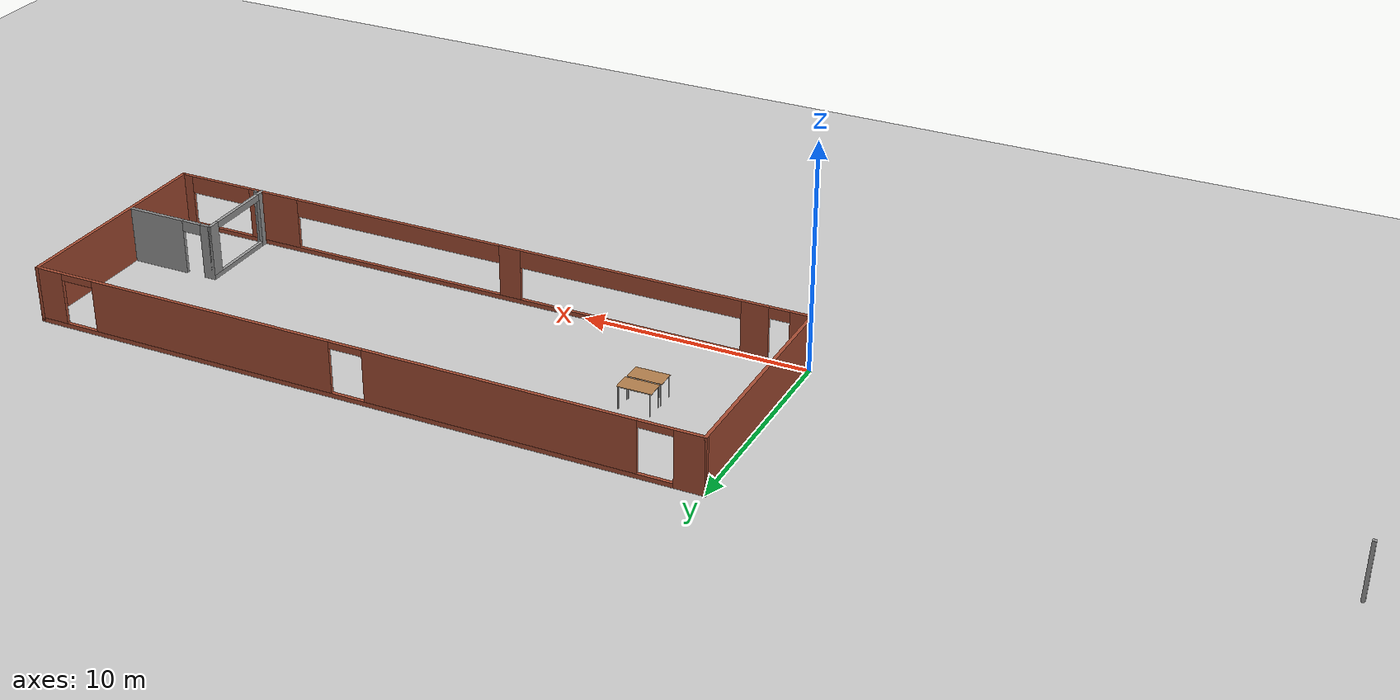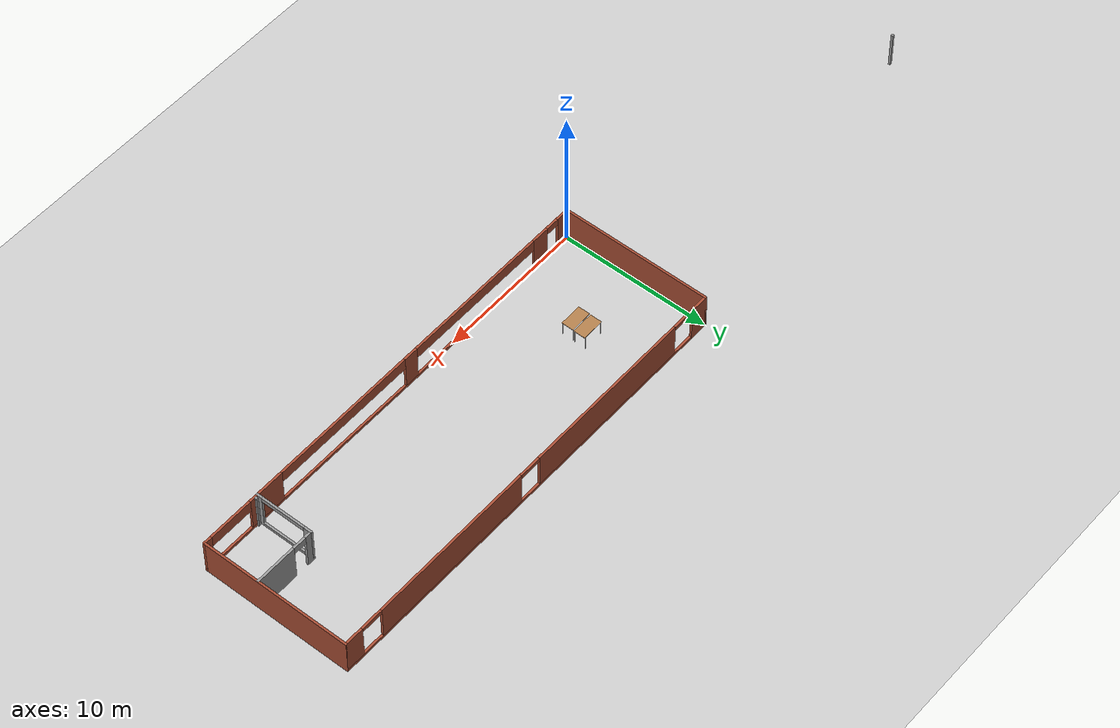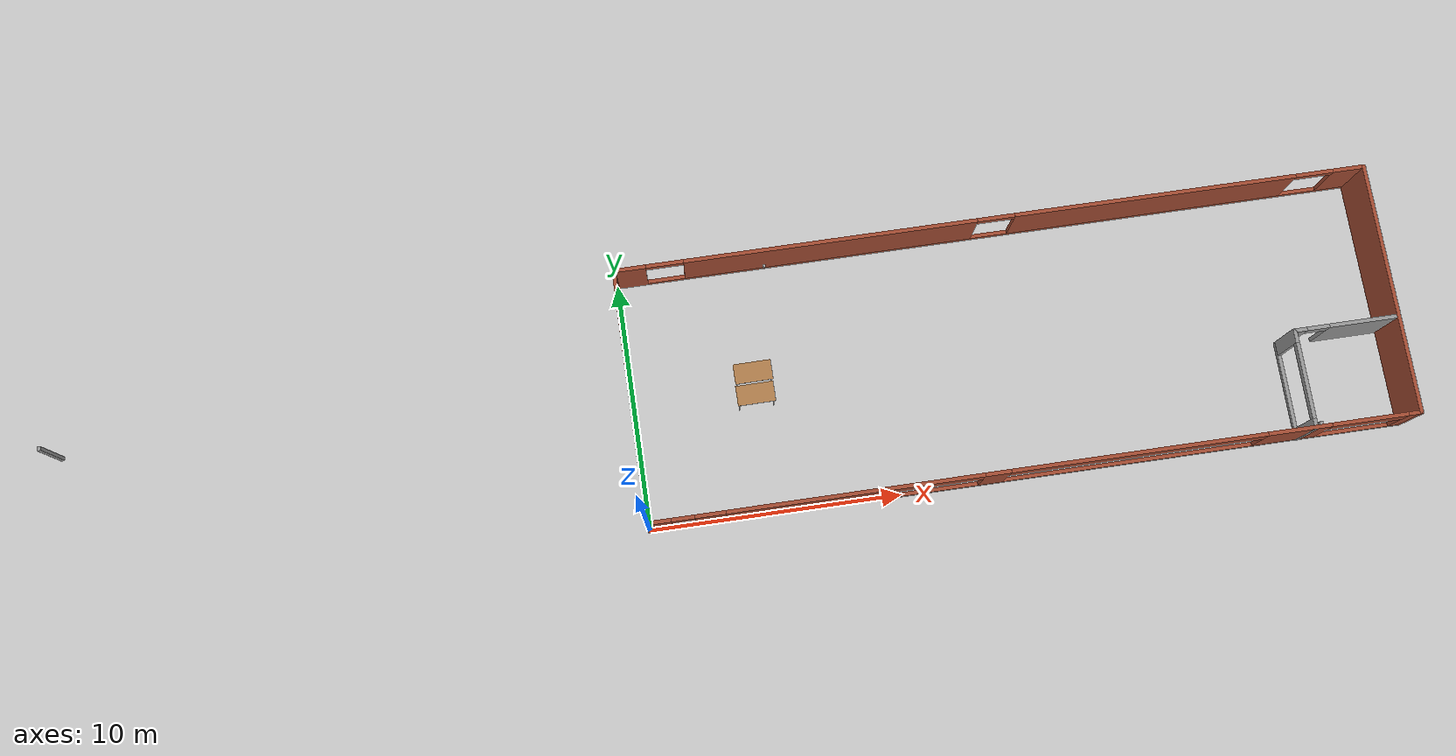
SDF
<sdf version="1.6">
 <world name="default">
  <model name="ground_plane">
   <static>1</static>
   <link name="link">
    <collision name="collision">
     <geometry><plane><normal>0 0 1</normal><size>100 100</size></plane></geometry>
     <surface>
      <contact><collide_bitmask>65535</collide_bitmask></contact>
      <friction><ode><mu>100</mu><mu2>50</mu2></ode></friction>
     </surface>
    </collision>
    <visual name="visual">
     <cast_shadows>0</cast_shadows>
     <geometry><plane><normal>0 0 1</normal><size>100 100</size></plane></geometry>
     <material>
      <script><uri>file://media/materials/scripts/gazebo.material</uri><name>Gazebo/Grey</name></script>
     </material>
    </visual>
   </link>
  </model>
  <model name="office">
   <pose>3.67575 4.99351 0 0 -0 0</pose>
   <link name="Wall_13">
    <collision name="Wall_13_Collision">
     <geometry><box><size>10.15 0.15 2.5</size></box></geometry>
     <pose>0 0 1.25 0 -0 0</pose>
    </collision>
    <visual name="Wall_13_Visual">
     <pose>0 0 1.25 0 -0 0</pose>
     <geometry><box><size>10.15 0.15 2.5</size></box></geometry>
     <material>
      <script><uri>file://media/materials/scripts/gazebo.material</uri><name>Gazebo/Bricks</name></script>
      <ambient>1 1 1 1</ambient>
     </material>
     <meta><layer>0</layer></meta>
    </visual>
    <pose>-3.67575 0.006489 0 0 -0 1.5708</pose>
   </link>
   <link name="Wall_15">
    <pose>11.3242 5.00649 0 0 -0 0</pose>
    <visual name="Wall_15_Visual_0">
     <pose>-14.4125 0 1.25 0 -0 0</pose>
     <geometry><box><size>1.325 0.15 2.5</size></box></geometry>
     <material>
      <script><uri>file://media/materials/scripts/gazebo.material</uri><name>Gazebo/Bricks</name></script>
      <ambient>1 1 1 1</ambient>
     </material>
     <meta><layer>0</layer></meta>
    </visual>
    <collision name="Wall_15_Collision_0">
     <geometry><box><size>1.325 0.15 2.5</size></box></geometry>
     <pose>-14.4125 0 1.25 0 -0 0</pose>
    </collision>
    <visual name="Wall_15_Visual_1">
     <pose>0.6625 0 0.1 0 -0 0</pose>
     <geometry><box><size>28.825 0.15 0.2</size></box></geometry>
     <material>
      <script><uri>file://media/materials/scripts/gazebo.material</uri><name>Gazebo/Bricks</name></script>
      <ambient>1 1 1 1</ambient>
     </material>
     <meta><layer>0</layer></meta>
    </visual>
    <collision name="Wall_15_Collision_1">
     <geometry><box><size>28.825 0.15 0.2</size></box></geometry>
     <pose>0.6625 0 0.1 0 -0 0</pose>
    </collision>
    <visual name="Wall_15_Visual_2">
     <pose>-6.4 0 1.35 0 -0 0</pose>
     <geometry><box><size>11.7 0.15 2.3</size></box></geometry>
     <material>
      <script><uri>file://media/materials/scripts/gazebo.material</uri><name>Gazebo/Bricks</name></script>
      <ambient>1 1 1 1</ambient>
     </material>
     <meta><layer>0</layer></meta>
    </visual>
    <collision name="Wall_15_Collision_2">
     <geometry><box><size>11.7 0.15 2.3</size></box></geometry>
     <pose>-6.4 0 1.35 0 -0 0</pose>
    </collision>
    <visual name="Wall_15_Visual_3">
     <pose>6.6 0 1.35 0 -0 0</pose>
     <geometry><box><size>11.3 0.15 2.3</size></box></geometry>
     <material>
      <script><uri>file://media/materials/scripts/gazebo.material</uri><name>Gazebo/Bricks</name></script>
      <ambient>1 1 1 1</ambient>
     </material>
     <meta><layer>0</layer></meta>
    </visual>
    <collision name="Wall_15_Collision_3">
     <geometry><box><size>11.3 0.15 2.3</size></box></geometry>
     <pose>6.6 0 1.35 0 -0 0</pose>
    </collision>
    <visual name="Wall_15_Visual_4">
     <pose>14.4125 0 1.35 0 -0 0</pose>
     <geometry><box><size>1.325 0.15 2.3</size></box></geometry>
     <material>
      <script><uri>file://media/materials/scripts/gazebo.material</uri><name>Gazebo/Bricks</name></script>
      <ambient>1 1 1 1</ambient>
     </material>
     <meta><layer>0</layer></meta>
    </visual>
    <collision name="Wall_15_Collision_4">
     <geometry><box><size>1.325 0.15 2.3</size></box></geometry>
     <pose>14.4125 0 1.35 0 -0 0</pose>
    </collision>
    <visual name="Wall_15_Visual_5">
     <pose>-13 0 2.35 0 -0 0</pose>
     <geometry><box><size>1.5 0.15 0.3</size></box></geometry>
     <material>
      <script><uri>file://media/materials/scripts/gazebo.material</uri><name>Gazebo/Bricks</name></script>
      <ambient>1 1 1 1</ambient>
     </material>
     <meta><layer>0</layer></meta>
    </visual>
    <collision name="Wall_15_Collision_5">
     <geometry><box><size>1.5 0.15 0.3</size></box></geometry>
     <pose>-13 0 2.35 0 -0 0</pose>
    </collision>
    <visual name="Wall_15_Visual_6">
     <pose>0.2 0 2.35 0 -0 0</pose>
     <geometry><box><size>1.5 0.15 0.3</size></box></geometry>
     <material>
      <script><uri>file://media/materials/scripts/gazebo.material</uri><name>Gazebo/Bricks</name></script>
      <ambient>1 1 1 1</ambient>
     </material>
     <meta><layer>0</layer></meta>
    </visual>
    <collision name="Wall_15_Collision_6">
     <geometry><box><size>1.5 0.15 0.3</size></box></geometry>
     <pose>0.2 0 2.35 0 -0 0</pose>
    </collision>
    <visual name="Wall_15_Visual_7">
     <pose>13 0 2.35 0 -0 0</pose>
     <geometry><box><size>1.5 0.15 0.3</size></box></geometry>
     <material>
      <script><uri>file://media/materials/scripts/gazebo.material</uri><name>Gazebo/Bricks</name></script>
      <ambient>1 1 1 1</ambient>
     </material>
     <meta><layer>0</layer></meta>
    </visual>
    <collision name="Wall_15_Collision_7">
     <geometry><box><size>1.5 0.15 0.3</size></box></geometry>
     <pose>13 0 2.35 0 -0 0</pose>
    </collision>
   </link>
   <link name="Wall_16">
    <collision name="Wall_16_Collision">
     <geometry><box><size>10.15 0.15 2.5</size></box></geometry>
     <pose>0 0 1.25 0 -0 0</pose>
    </collision>
    <visual name="Wall_16_Visual">
     <pose>0 0 1.25 0 -0 0</pose>
     <geometry><box><size>10.15 0.15 2.5</size></box></geometry>
     <material>
      <script><uri>file://media/materials/scripts/gazebo.material</uri><name>Gazebo/Bricks</name></script>
      <ambient>1 1 1 1</ambient>
     </material>
     <meta><layer>0</layer></meta>
    </visual>
    <pose>26.3242 0.006489 0 0 0 -1.5708</pose>
   </link>
   <link name="Wall_19">
    <collision name="Wall_19_Collision">
     <geometry><box><size>0.15 0.15 2.5</size></box></geometry>
     <pose>0 0 1.25 0 -0 0</pose>
    </collision>
    <visual name="Wall_19_Visual">
     <pose>0 0 1.25 0 -0 0</pose>
     <geometry><box><size>0.15 0.15 2.5</size></box></geometry>
     <material>
      <script><uri>file://media/materials/scripts/gazebo.material</uri><name>Gazebo/Grey</name></script>
      <ambient>1 1 1 1</ambient>
     </material>
     <meta><layer>0</layer></meta>
    </visual>
    <pose>22.4116 -4.87772 0 0 -0 0</pose>
   </link>
   <link name="Wall_21">
    <pose>11.3242 -4.99351 0 0 -0 0</pose>
    <visual name="Wall_21_Visual_0">
     <pose>-14.5861 0 1.25 0 -0 0</pose>
     <geometry><box><size>0.977872 0.15 2.5</size></box></geometry>
     <material>
      <script><uri>file://media/materials/scripts/gazebo.material</uri><name>Gazebo/Bricks</name></script>
      <ambient>1 1 1 1</ambient>
     </material>
     <meta><layer>0</layer></meta>
    </visual>
    <collision name="Wall_21_Collision_0">
     <geometry><box><size>0.977872 0.15 2.5</size></box></geometry>
     <pose>-14.5861 0 1.25 0 -0 0</pose>
    </collision>
    <visual name="Wall_21_Visual_1">
     <pose>-12.5986 0 1.25 0 -0 0</pose>
     <geometry><box><size>1.19713 0.15 2.5</size></box></geometry>
     <material>
      <script><uri>file://media/materials/scripts/gazebo.material</uri><name>Gazebo/Bricks</name></script>
      <ambient>1 1 1 1</ambient>
     </material>
     <meta><layer>0</layer></meta>
    </visual>
    <collision name="Wall_21_Collision_1">
     <geometry><box><size>1.19713 0.15 2.5</size></box></geometry>
     <pose>-12.5986 0 1.25 0 -0 0</pose>
    </collision>
    <visual name="Wall_21_Visual_2">
     <pose>1.5375 0 0.1 0 -0 0</pose>
     <geometry><box><size>27.075 0.15 0.2</size></box></geometry>
     <material>
      <script><uri>file://media/materials/scripts/gazebo.material</uri><name>Gazebo/Bricks</name></script>
      <ambient>1 1 1 1</ambient>
     </material>
     <meta><layer>0</layer></meta>
    </visual>
    <collision name="Wall_21_Collision_2">
     <geometry><box><size>27.075 0.15 0.2</size></box></geometry>
     <pose>1.5375 0 0.1 0 -0 0</pose>
    </collision>
    <visual name="Wall_21_Visual_3">
     <pose>-1.5 0 1.35 0 -0 0</pose>
     <geometry><box><size>1 0.15 2.3</size></box></geometry>
     <material>
      <script><uri>file://media/materials/scripts/gazebo.material</uri><name>Gazebo/Bricks</name></script>
      <ambient>1 1 1 1</ambient>
     </material>
     <meta><layer>0</layer></meta>
    </visual>
    <collision name="Wall_21_Collision_3">
     <geometry><box><size>1 0.15 2.3</size></box></geometry>
     <pose>-1.5 0 1.35 0 -0 0</pose>
    </collision>
    <visual name="Wall_21_Visual_4">
     <pose>10.2486 0 1.35 0 -0 0</pose>
     <geometry><box><size>2.49712 0.15 2.3</size></box></geometry>
     <material>
      <script><uri>file://media/materials/scripts/gazebo.material</uri><name>Gazebo/Bricks</name></script>
      <ambient>1 1 1 1</ambient>
     </material>
     <meta><layer>0</layer></meta>
    </visual>
    <collision name="Wall_21_Collision_4">
     <geometry><box><size>2.49712 0.15 2.3</size></box></geometry>
     <pose>10.2486 0 1.35 0 -0 0</pose>
    </collision>
    <visual name="Wall_21_Visual_5">
     <pose>14.7861 0 1.35 0 -0 0</pose>
     <geometry><box><size>0.577882 0.15 2.3</size></box></geometry>
     <material>
      <script><uri>file://media/materials/scripts/gazebo.material</uri><name>Gazebo/Bricks</name></script>
      <ambient>1 1 1 1</ambient>
     </material>
     <meta><layer>0</layer></meta>
    </visual>
    <collision name="Wall_21_Collision_5">
     <geometry><box><size>0.577882 0.15 2.3</size></box></geometry>
     <pose>14.7861 0 1.35 0 -0 0</pose>
    </collision>
    <visual name="Wall_21_Visual_6">
     <pose>-7 0 2.1 0 -0 0</pose>
     <geometry><box><size>10 0.15 0.8</size></box></geometry>
     <material>
      <script><uri>file://media/materials/scripts/gazebo.material</uri><name>Gazebo/Bricks</name></script>
      <ambient>1 1 1 1</ambient>
     </material>
     <meta><layer>0</layer></meta>
    </visual>
    <collision name="Wall_21_Collision_6">
     <geometry><box><size>10 0.15 0.8</size></box></geometry>
     <pose>-7 0 2.1 0 -0 0</pose>
    </collision>
    <visual name="Wall_21_Visual_7">
     <pose>4 0 2.1 0 -0 0</pose>
     <geometry><box><size>10 0.15 0.8</size></box></geometry>
     <material>
      <script><uri>file://media/materials/scripts/gazebo.material</uri><name>Gazebo/Bricks</name></script>
      <ambient>1 1 1 1</ambient>
     </material>
     <meta><layer>0</layer></meta>
    </visual>
    <collision name="Wall_21_Collision_7">
     <geometry><box><size>10 0.15 0.8</size></box></geometry>
     <pose>4 0 2.1 0 -0 0</pose>
    </collision>
    <visual name="Wall_21_Visual_8">
     <pose>12.9971 0 2.1 0 -0 0</pose>
     <geometry><box><size>3 0.15 0.8</size></box></geometry>
     <material>
      <script><uri>file://media/materials/scripts/gazebo.material</uri><name>Gazebo/Bricks</name></script>
      <ambient>1 1 1 1</ambient>
     </material>
     <meta><layer>0</layer></meta>
    </visual>
    <collision name="Wall_21_Collision_8">
     <geometry><box><size>3 0.15 0.8</size></box></geometry>
     <pose>12.9971 0 2.1 0 -0 0</pose>
    </collision>
    <visual name="Wall_21_Visual_9">
     <pose>-13.6471 0 2.25 0 -0 0</pose>
     <geometry><box><size>0.9 0.15 0.5</size></box></geometry>
     <material>
      <script><uri>file://media/materials/scripts/gazebo.material</uri><name>Gazebo/Bricks</name></script>
      <ambient>1 1 1 1</ambient>
     </material>
     <meta><layer>0</layer></meta>
    </visual>
    <collision name="Wall_21_Collision_9">
     <geometry><box><size>0.9 0.15 0.5</size></box></geometry>
     <pose>-13.6471 0 2.25 0 -0 0</pose>
    </collision>
   </link>
   <link name="Wall_23">
    <pose>22.1935 -3.08149 0 0 -0 1.5708</pose>
    <visual name="Wall_23_Visual_0">
     <pose>-1.78202 0 1.25 0 -0 0</pose>
     <geometry><box><size>0.435956 0.15 2.5</size></box></geometry>
     <material>
      <script><uri>file://media/materials/scripts/gazebo.material</uri><name>Gazebo/Grey</name></script>
      <ambient>1 1 1 1</ambient>
     </material>
     <meta><layer>0</layer></meta>
    </visual>
    <collision name="Wall_23_Collision_0">
     <geometry><box><size>0.435956 0.15 2.5</size></box></geometry>
     <pose>-1.78202 0 1.25 0 -0 0</pose>
    </collision>
    <visual name="Wall_23_Visual_1">
     <pose>0.217978 0 0.1 0 -0 0</pose>
     <geometry><box><size>3.56404 0.15 0.2</size></box></geometry>
     <material>
      <script><uri>file://media/materials/scripts/gazebo.material</uri><name>Gazebo/Grey</name></script>
      <ambient>1 1 1 1</ambient>
     </material>
     <meta><layer>0</layer></meta>
    </visual>
    <collision name="Wall_23_Collision_1">
     <geometry><box><size>3.56404 0.15 0.2</size></box></geometry>
     <pose>0.217978 0 0.1 0 -0 0</pose>
    </collision>
    <visual name="Wall_23_Visual_2">
     <pose>1.71798 0 1.35 0 -0 0</pose>
     <geometry><box><size>0.564044 0.15 2.3</size></box></geometry>
     <material>
      <script><uri>file://media/materials/scripts/gazebo.material</uri><name>Gazebo/Grey</name></script>
      <ambient>1 1 1 1</ambient>
     </material>
     <meta><layer>0</layer></meta>
    </visual>
    <collision name="Wall_23_Collision_2">
     <geometry><box><size>0.564044 0.15 2.3</size></box></geometry>
     <pose>1.71798 0 1.35 0 -0 0</pose>
    </collision>
    <visual name="Wall_23_Visual_3">
     <pose>-0.064044 0 2.35 0 -0 0</pose>
     <geometry><box><size>3 0.15 0.3</size></box></geometry>
     <material>
      <script><uri>file://media/materials/scripts/gazebo.material</uri><name>Gazebo/Grey</name></script>
      <ambient>1 1 1 1</ambient>
     </material>
     <meta><layer>0</layer></meta>
    </visual>
    <collision name="Wall_23_Collision_3">
     <geometry><box><size>3 0.15 0.3</size></box></geometry>
     <pose>-0.064044 0 2.35 0 -0 0</pose>
    </collision>
   </link>
   <link name="Wall_24">
    <pose>24.2435 -1.15649 0 0 -0 0</pose>
    <visual name="Wall_24_Visual_0">
     <pose>-1.84726 0 1.25 0 -0 0</pose>
     <geometry><box><size>0.555478 0.15 2.5</size></box></geometry>
     <material>
      <script><uri>file://media/materials/scripts/gazebo.material</uri><name>Gazebo/Grey</name></script>
      <ambient>1 1 1 1</ambient>
     </material>
     <meta><layer>0</layer></meta>
    </visual>
    <collision name="Wall_24_Collision_0">
     <geometry><box><size>0.555478 0.15 2.5</size></box></geometry>
     <pose>-1.84726 0 1.25 0 -0 0</pose>
    </collision>
    <visual name="Wall_24_Visual_1">
     <pose>0.727739 0 1.25 0 -0 0</pose>
     <geometry><box><size>2.79452 0.15 2.5</size></box></geometry>
     <material>
      <script><uri>file://media/materials/scripts/gazebo.material</uri><name>Gazebo/Grey</name></script>
      <ambient>1 1 1 1</ambient>
     </material>
     <meta><layer>0</layer></meta>
    </visual>
    <collision name="Wall_24_Collision_1">
     <geometry><box><size>2.79452 0.15 2.5</size></box></geometry>
     <pose>0.727739 0 1.25 0 -0 0</pose>
    </collision>
    <visual name="Wall_24_Visual_2">
     <pose>-1.11952 0 2.25 0 -0 0</pose>
     <geometry><box><size>0.9 0.15 0.5</size></box></geometry>
     <material>
      <script><uri>file://media/materials/scripts/gazebo.material</uri><name>Gazebo/Grey</name></script>
      <ambient>1 1 1 1</ambient>
     </material>
     <meta><layer>0</layer></meta>
    </visual>
    <collision name="Wall_24_Collision_2">
     <geometry><box><size>0.9 0.15 0.5</size></box></geometry>
     <pose>-1.11952 0 2.25 0 -0 0</pose>
    </collision>
   </link>
   <link name="Wall_4">
    <collision name="Wall_4_Collision">
     <geometry><box><size>0.15 0.15 2.5</size></box></geometry>
     <pose>0 0 1.25 0 -0 0</pose>
    </collision>
    <visual name="Wall_4_Visual">
     <pose>0 0 1.25 0 -0 0</pose>
     <geometry><box><size>0.15 0.15 2.5</size></box></geometry>
     <material>
      <script><uri>file://media/materials/scripts/gazebo.material</uri><name>Gazebo/Grey</name></script>
      <ambient>1 1 1 1</ambient>
     </material>
     <meta><layer>0</layer></meta>
    </visual>
    <pose>-26.3242 1.1762 0 0 -0 0</pose>
   </link>
   <static>1</static>
  </model>
  <model name="beer">
   <link name="link">
    <pose>0 0 0.115 0 -0 0</pose>
    <inertial>
     <mass>0.39</mass>
     <inertia><ixx>0.00058</ixx><ixy>0</ixy><ixz>0</ixz><iyy>0.00058</iyy><iyz>0</iyz><izz>0.00019</izz></inertia>
    </inertial>
    <collision name="collision">
     <geometry><cylinder><radius>0.055</radius><length>0.23</length></cylinder></geometry>
    </collision>
    <visual name="visual">
     <geometry><cylinder><radius>0.055</radius><length>0.23</length></cylinder></geometry>
     <material>
      <script>
       <uri>model://beer/materials/scripts</uri>
       <uri>model://beer/materials/textures</uri>
       <name>Beer/Diffuse</name>
      </script>
     </material>
    </visual>
   </link>
   <pose>5.92467 9.64234 1.24156 3e-06 -2.5e-05 0.003271</pose>
  </model>
  <model name="table_clone_2_clone_1">
   <static>1</static>
   <link name="link">
    <collision name="surface">
     <pose>0 0 1 0 -0 0</pose>
     <geometry><box><size>1.5 0.8 0.03</size></box></geometry>
     <surface><friction><ode><mu>0.6</mu><mu2>0.6</mu2></ode></friction></surface>
    </collision>
    <visual name="visual1">
     <pose>0 0 1 0 -0 0</pose>
     <geometry><box><size>1.5 0.8 0.03</size></box></geometry>
     <material>
      <script><uri>file://media/materials/scripts/gazebo.material</uri><name>Gazebo/Wood</name></script>
     </material>
    </visual>
    <collision name="front_left_leg">
     <pose>0.68 0.38 0.5 0 -0 0</pose>
     <geometry><cylinder><radius>0.02</radius><length>1</length></cylinder></geometry>
    </collision>
    <visual name="front_left_leg">
     <pose>0.68 0.38 0.5 0 -0 0</pose>
     <geometry><cylinder><radius>0.02</radius><length>1</length></cylinder></geometry>
     <material>
      <script><uri>file://media/materials/scripts/gazebo.material</uri><name>Gazebo/Grey</name></script>
     </material>
    </visual>
    <collision name="front_right_leg">
     <pose>0.68 -0.38 0.5 0 -0 0</pose>
     <geometry><cylinder><radius>0.02</radius><length>1</length></cylinder></geometry>
    </collision>
    <visual name="front_right_leg">
     <pose>0.68 -0.38 0.5 0 -0 0</pose>
     <geometry><cylinder><radius>0.02</radius><length>1</length></cylinder></geometry>
     <material>
      <script><uri>file://media/materials/scripts/gazebo.material</uri><name>Gazebo/Grey</name></script>
     </material>
    </visual>
    <collision name="back_right_leg">
     <pose>-0.68 -0.38 0.5 0 -0 0</pose>
     <geometry><cylinder><radius>0.02</radius><length>1</length></cylinder></geometry>
    </collision>
    <visual name="back_right_leg">
     <pose>-0.68 -0.38 0.5 0 -0 0</pose>
     <geometry><cylinder><radius>0.02</radius><length>1</length></cylinder></geometry>
     <material>
      <script><uri>file://media/materials/scripts/gazebo.material</uri><name>Gazebo/Grey</name></script>
     </material>
    </visual>
    <collision name="back_left_leg">
     <pose>-0.68 0.38 0.5 0 -0 0</pose>
     <geometry><cylinder><radius>0.02</radius><length>1</length></cylinder></geometry>
    </collision>
    <visual name="back_left_leg">
     <pose>-0.68 0.38 0.5 0 -0 0</pose>
     <geometry><cylinder><radius>0.02</radius><length>1</length></cylinder></geometry>
     <material>
      <script><uri>file://media/materials/scripts/gazebo.material</uri><name>Gazebo/Grey</name></script>
     </material>
    </visual>
   </link>
   <pose>4.86746 5.54054 0 0 -0 0.008376</pose>
  </model>
  <model name="table_clone_2_clone_2">
   <static>1</static>
   <link name="link">
    <collision name="surface">
     <pose>0 0 1 0 -0 0</pose>
     <geometry><box><size>1.5 0.8 0.03</size></box></geometry>
     <surface><friction><ode><mu>0.6</mu><mu2>0.6</mu2></ode></friction></surface>
    </collision>
    <visual name="visual1">
     <pose>0 0 1 0 -0 0</pose>
     <geometry><box><size>1.5 0.8 0.03</size></box></geometry>
     <material>
      <script><uri>file://media/materials/scripts/gazebo.material</uri><name>Gazebo/Wood</name></script>
     </material>
    </visual>
    <collision name="front_left_leg">
     <pose>0.68 0.38 0.5 0 -0 0</pose>
     <geometry><cylinder><radius>0.02</radius><length>1</length></cylinder></geometry>
    </collision>
    <visual name="front_left_leg">
     <pose>0.68 0.38 0.5 0 -0 0</pose>
     <geometry><cylinder><radius>0.02</radius><length>1</length></cylinder></geometry>
     <material>
      <script><uri>file://media/materials/scripts/gazebo.material</uri><name>Gazebo/Grey</name></script>
     </material>
    </visual>
    <collision name="front_right_leg">
     <pose>0.68 -0.38 0.5 0 -0 0</pose>
     <geometry><cylinder><radius>0.02</radius><length>1</length></cylinder></geometry>
    </collision>
    <visual name="front_right_leg">
     <pose>0.68 -0.38 0.5 0 -0 0</pose>
     <geometry><cylinder><radius>0.02</radius><length>1</length></cylinder></geometry>
     <material>
      <script><uri>file://media/materials/scripts/gazebo.material</uri><name>Gazebo/Grey</name></script>
     </material>
    </visual>
    <collision name="back_right_leg">
     <pose>-0.68 -0.38 0.5 0 -0 0</pose>
     <geometry><cylinder><radius>0.02</radius><length>1</length></cylinder></geometry>
    </collision>
    <visual name="back_right_leg">
     <pose>-0.68 -0.38 0.5 0 -0 0</pose>
     <geometry><cylinder><radius>0.02</radius><length>1</length></cylinder></geometry>
     <material>
      <script><uri>file://media/materials/scripts/gazebo.material</uri><name>Gazebo/Grey</name></script>
     </material>
    </visual>
    <collision name="back_left_leg">
     <pose>-0.68 0.38 0.5 0 -0 0</pose>
     <geometry><cylinder><radius>0.02</radius><length>1</length></cylinder></geometry>
    </collision>
    <visual name="back_left_leg">
     <pose>-0.68 0.38 0.5 0 -0 0</pose>
     <geometry><cylinder><radius>0.02</radius><length>1</length></cylinder></geometry>
     <material>
      <script><uri>file://media/materials/scripts/gazebo.material</uri><name>Gazebo/Grey</name></script>
     </material>
    </visual>
   </link>
   <pose>4.84461 4.66526 0 0 -0 0.008376</pose>
  </model>
 </world>
</sdf>
